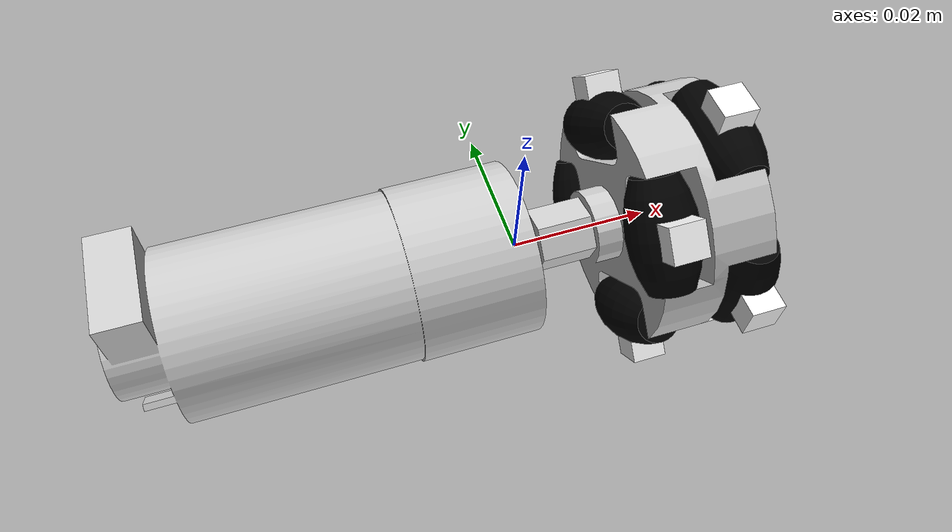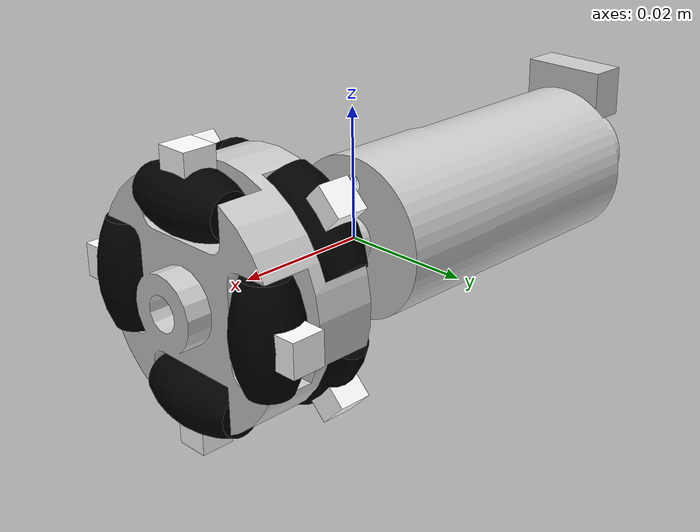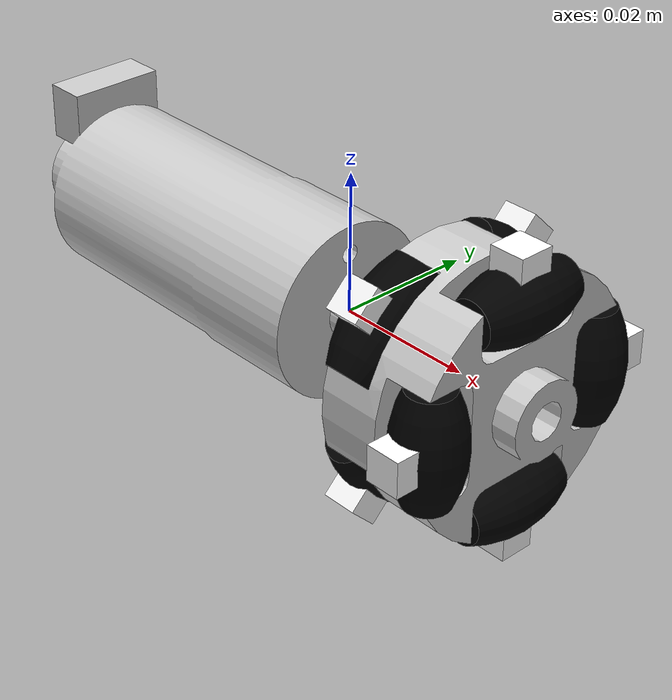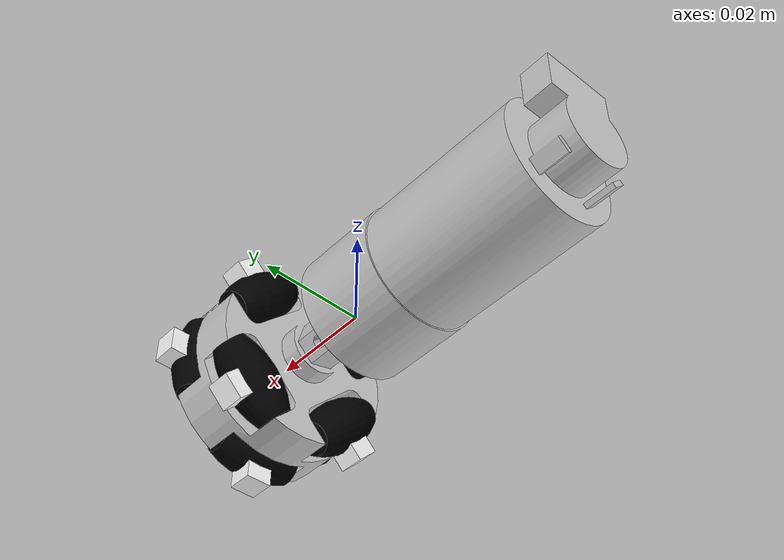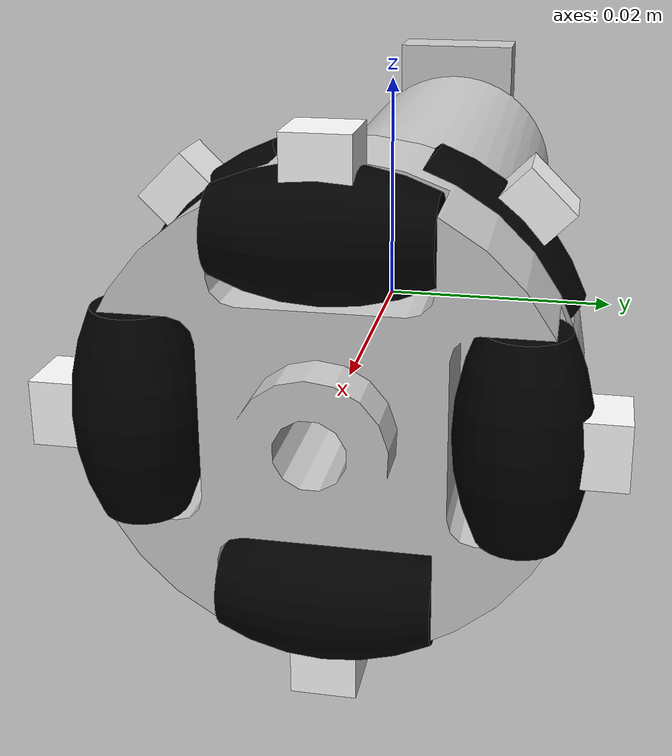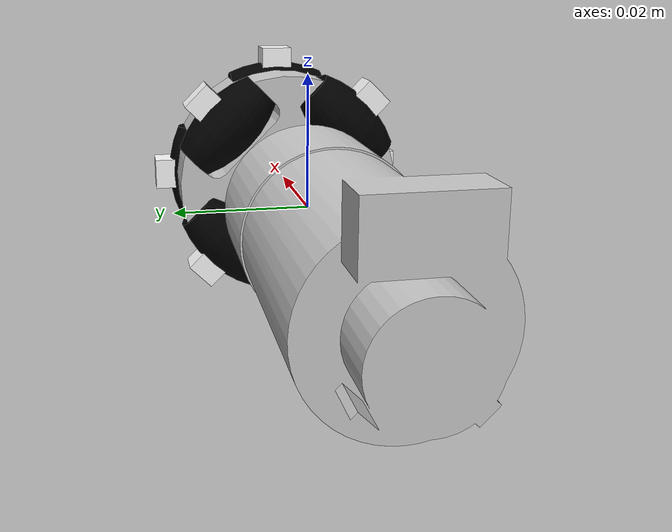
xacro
<?xml version="1.0"?>
<robot name="my_robo" xmlns:xacro="http://ros.org/wiki/xacro">
  <xacro:include filename="$(find sim_lecture)/urdf/odm_common.xacro"/>
  <xacro:include filename="$(find sim_lecture)/urdf/odm_omni_wheel.xacro"/>

  <link name="base_link"/>

  <xacro:motor prefix="motor0" parent="base_link" />
    <joint name="wheel0_base_joint" type="fixed">
      <parent link="motor0_shaft_link"/>
      <child  link="whell0_base_link"/>
      <origin xyz="0.0105 0 0" rpy="0 ${pi/2} 0"/>
    </joint>
    <link name="whell0_base_link" />
  <xacro:omni_wheel prefix="wheel0" parent="whell0_base_link" />

  <!-- ===============  Gazebo =============== -->
  <gazebo>
    <plugin name="gazebo_ros_control" filename="libgazebo_ros_control.so">
      <robotNamespace>/odm_robot</robotNamespace>
    </plugin>
  </gazebo>

</robot>

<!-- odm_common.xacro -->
<robot xmlns:xacro="http://ros.org/wiki/xacro">
  <xacro:macro name="pi" params="3.1415926535897931" />
  <material name="gray">
    <color rgba="0.8 0.8 0.8 1.0"/>
  </material>
  <material name="black">
    <color rgba="0 0 0 1.0"/>
  </material>
  <material name="white">
    <color rgba="1.0 1.0 1.0 1.0"/>
  </material>
  <material name="red">
    <color rgba="1.0 0 0 1.0"/>
  </material>
  <material name="light_red">
    <color rgba="1.0 0.5 0.5 1.0"/>
  </material>
  <material name="yellow">
    <color rgba="0 1.0 1.0 1.0"/>
  </material>
</robot>

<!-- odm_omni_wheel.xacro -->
<robot xmlns:xacro="http://ros.org/wiki/xacro">
  <xacro:macro name="barrel" params="prefix parent dir">
    <joint name="${prefix}_joint" type="continuous">
      <parent link="${parent}"/>
      <child link="${prefix}_link"/>
      <origin rpy="${pi/2} 0 ${dir}" xyz="${0.014*cos(dir)} ${0.014*sin(dir)} 0.006"/>
      <axis xyz="0 0 1"/>
      <dynamics damping="0.001"/>
    </joint>
    <link name="${prefix}_link">
      <visual>
        <geometry>
          <mesh filename="package://sim_lecture/stl/omni_barrel.stl" />
        </geometry>
        <material name="black"/>
      </visual>
      <collision>
        <geometry>
          <mesh filename="package://sim_lecture/stl/omni_barrel.stl" />
        </geometry>
      </collision>
      <inertial>
        <mass value="0.001"/>
        <inertia ixx="0.0001" ixy="0" ixz="0" iyy="0.0001" iyz="0" izz="0.0001"/>
      </inertial>
    </link>
    <gazebo reference="${prefix}_link">
      <mu1 value="3.0" />
      <mu2 value="3.0" />
      <kp value="10000" />
      <kd value="100" />
      <material>Gazebo/Black</material>
    </gazebo>
    <transmission name="${prefix}_trans">
      <type>transmission_interface/SimpleTransmission</type>
      <joint name="${prefix}_joint">
        <hardwareInterface>hardware_interface/EffortJointInterface</hardwareInterface>
      </joint>
      <actuator name="${prefix}_motor">
        <hardwareInterface>hardware_interface/EffortJointInterface</hardwareInterface>
        <mechanicalReduction>1</mechanicalReduction>
      </actuator>
    </transmission>

    <joint name="${prefix}_mark_joint" type="fixed">
      <parent link="${prefix}_link"/>
      <child link="${prefix}_mark_link"/>
      <origin rpy="0 0 0" xyz="0.005 0 0"/>
    </joint>
    <link name="${prefix}_mark_link">
      <visual>
        <geometry>
          <box size="0.005 0.005 0.005"/>
        </geometry>
        <material name="white"/>
      </visual>
      <inertial>
        <mass value="0.001"/>
        <inertia ixx="0.0001" ixy="0" ixz="0" iyy="0.0001" iyz="0" izz="0.0001"/>
      </inertial>
    </link>
    <gazebo reference="${prefix}_mark_link">
      <material>Gazebo/White</material>
    </gazebo>
  </xacro:macro>

  <xacro:macro name="omni_wheel" params="prefix parent">
    <joint name="${prefix}_housing_joint" type="fixed">
      <parent link="${parent}"/>
      <child link="${prefix}_housing_link"/>
      <origin rpy="0 0 0" xyz="0 0 0"/>
    </joint>
    <link name="${prefix}_housing_link">
      <visual>
        <geometry>
          <mesh filename="package://sim_lecture/stl/omni_housing.stl" />
        </geometry>
        <origin xyz="0 0 0" rpy="0 0 0"/>
        <material name="gray"/>
      </visual>
      <inertial>
        <mass value="0.009"/>
        <inertia ixx="0.0001" ixy="0" ixz="0" iyy="0.0001" iyz="0" izz="0.0001"/>
      </inertial>
    </link>
    <gazebo reference="${prefix}_housing_link">
      <material>Gazebo/Gray</material>
    </gazebo>

    <joint name="${prefix}_housing_s_joint" type="fixed">
      <parent link="${prefix}_housing_link"/>
      <child link="${prefix}_housing_s_link"/>
      <origin rpy="0 ${pi} ${pi/4}" xyz="0 0 0"/>
    </joint>
    <link name="${prefix}_housing_s_link">
      <inertial>
        <mass value="0.001"/>
        <inertia ixx="0" ixy="0" ixz="0" iyy="0" iyz="0" izz="0.00001"/>
      </inertial>
    </link>

    <xacro:barrel prefix="${prefix}_barrel_1" parent="${prefix}_housing_link" dir="0"/>
    <xacro:barrel prefix="${prefix}_barrel_2" parent="${prefix}_housing_link" dir="${pi/2}"/>
    <xacro:barrel prefix="${prefix}_barrel_3" parent="${prefix}_housing_link" dir="${pi}"/>
    <xacro:barrel prefix="${prefix}_barrel_4" parent="${prefix}_housing_link" dir="${-pi/2}"/>
    <xacro:barrel prefix="${prefix}_barrel_5" parent="${prefix}_housing_s_link" dir="0"/>
    <xacro:barrel prefix="${prefix}_barrel_6" parent="${prefix}_housing_s_link" dir="${pi/2}"/>
    <xacro:barrel prefix="${prefix}_barrel_7" parent="${prefix}_housing_s_link" dir="${pi}"/>
    <xacro:barrel prefix="${prefix}_barrel_8" parent="${prefix}_housing_s_link" dir="${-pi/2}"/>
  </xacro:macro>

  <xacro:macro name="motor" params="prefix parent">
    <joint name="${prefix}_joint" type="fixed">
      <parent link="${parent}"/>
      <child  link="${prefix}_body_link"/>
    </joint>
    <link name="${prefix}_body_link">
      <visual>
        <geometry>
          <mesh filename="package://sim_lecture/stl/ga25_body.stl" />
        </geometry>
        <material name="gray"/>
      </visual>
      <collision>
        <geometry>
          <mesh filename="package://sim_lecture/stl/ga25_body.stl" />
        </geometry>
      </collision>
      <inertial>
        <mass value="0.150"/>
        <inertia ixx="0.001" ixy="0" ixz="0" iyy="0.001" iyz="0" izz="0.0005"/>
      </inertial>
    </link>
    <gazebo reference="${prefix}_body_link">
      <material>Gazebo/Gray</material>
    </gazebo>

    <joint name="${prefix}_shaft_joint" type="continuous">
      <parent link="${prefix}_body_link"/>
      <child  link="${prefix}_shaft_link"/>
      <origin rpy="0 0 0" xyz="0.012 0 0"/>
      <axis xyz="1 0 0"/>
      <dynamics damping="0.7"/>
    </joint>
    <transmission name="${prefix}_shaft_trans">
      <type>transmission_interface/SimpleTransmission</type>
      <joint name="${prefix}_shaft_joint">
        <hardwareInterface>hardware_interface/VelocityJointInterface</hardwareInterface>
      </joint>
      <actuator name="${prefix}_shaft_motor">
        <hardwareInterface>hardware_interface/VelocityJointInterface</hardwareInterface>
        <mechanicalReduction>1</mechanicalReduction>
      </actuator>
    </transmission>
    <link name="${prefix}_shaft_link">
      <visual>
        <geometry>
          <mesh filename="package://sim_lecture/stl/ga25_shaft.stl" />
        </geometry>
        <material name="gray"/>
      </visual>
      <inertial>
        <mass value="0.001"/>
        <inertia ixx="0.0001" ixy="0" ixz="0" iyy="0.0001" iyz="0" izz="0.0001"/>
      </inertial>
    </link>
    <gazebo reference="${prefix}_shaft_link">
      <material>Gazebo/Gray</material>
    </gazebo>
  </xacro:macro>
</robot>
